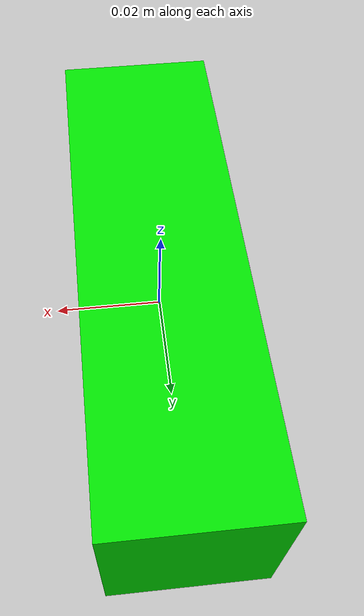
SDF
<?xml version="1.0"?>
<sdf version="1.6">
  <model name="green_rectangular_prism">
    <static>false</static>
    <allow_auto_disable>false</allow_auto_disable>
    <link name="link">
      <!-- Dimensions: length x width x height = 3cm x 10cm x 3.5cm.
           The narrow side is gripper-friendly; the long side tests yaw alignment. -->
      <inertial>
        <mass>0.08</mass>
        <inertia>
          <!-- Box inertia for m=0.08, x=0.03, y=0.10, z=0.035 -->
          <ixx>0.00007417</ixx>
          <iyy>0.00001417</iyy>
          <izz>0.00007267</izz>
          <ixy>0</ixy>
          <ixz>0</ixz>
          <iyz>0</iyz>
        </inertia>
      </inertial>

      <collision name="collision">
        <geometry>
          <box>
            <size>0.03 0.10 0.035</size>
          </box>
        </geometry>
        <surface>
          <friction>
            <ode>
              <mu>1.5</mu>
              <mu2>1.5</mu2>
            </ode>
          </friction>
          <contact>
            <ode>
              <kp>1000000</kp>
              <kd>1</kd>
            </ode>
          </contact>
        </surface>
      </collision>

      <visual name="visual">
        <geometry>
          <box>
            <size>0.03 0.10 0.035</size>
          </box>
        </geometry>
        <material>
          <ambient>0 1 0 1</ambient>
          <diffuse>0 0.85 0 1</diffuse>
          <specular>0.05 0.1 0.05 1</specular>
        </material>
      </visual>
    </link>
  </model>
</sdf>
